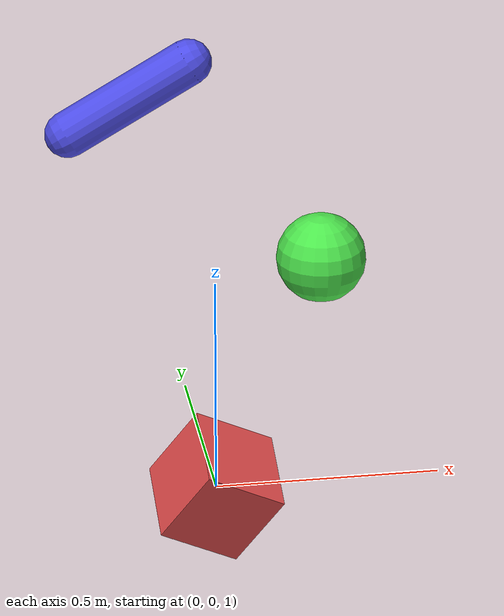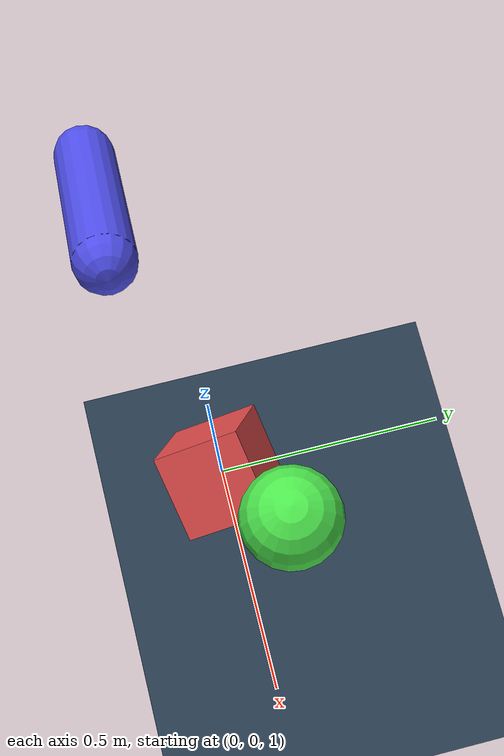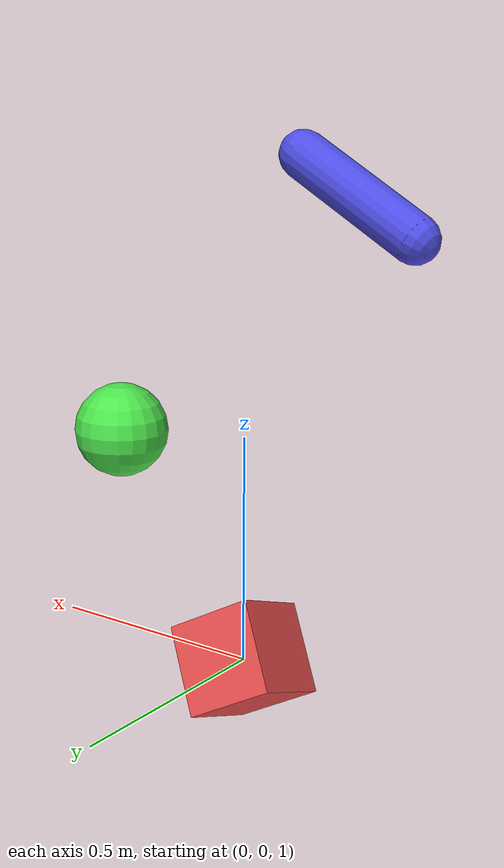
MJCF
<!-- Minimal MJCF scene: a floor, a light, and a few falling bodies. -->
<mujoco model="hello">
  <option timestep="0.002" gravity="0 0 -9.81"/>

  <visual>
    <headlight ambient="0.3 0.3 0.3"/>
  </visual>

  <asset>
    <texture name="grid" type="2d" builtin="checker" rgb1=".2 .3 .4" rgb2=".1 .15 .2"
             width="512" height="512"/>
    <material name="grid" texture="grid" texrepeat="4 4" reflectance="0.2"/>
  </asset>

  <worldbody>
    <light pos="0 0 3" dir="0 0 -1" diffuse="0.8 0.8 0.8"/>
    <geom name="floor" type="plane" size="2 2 0.1" material="grid"/>

    <body name="box" pos="0 0 1" euler="20 30 0">
      <freejoint/>
      <geom type="box" size="0.1 0.1 0.1" rgba="0.9 0.3 0.3 1"/>
    </body>

    <body name="sphere" pos="0.25 0.1 1.5">
      <freejoint/>
      <geom type="sphere" size="0.1" rgba="0.3 0.9 0.3 1"/>
    </body>

    <body name="capsule" pos="-0.2 -0.1 2" euler="0 60 0">
      <freejoint/>
      <geom type="capsule" size="0.05 0.15" rgba="0.3 0.3 0.9 1"/>
    </body>
  </worldbody>
</mujoco>
